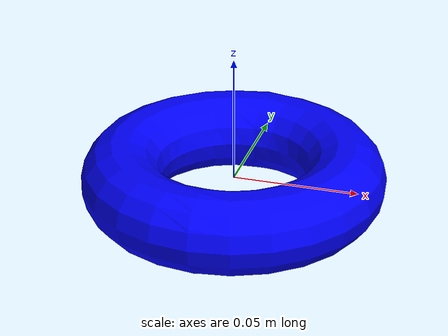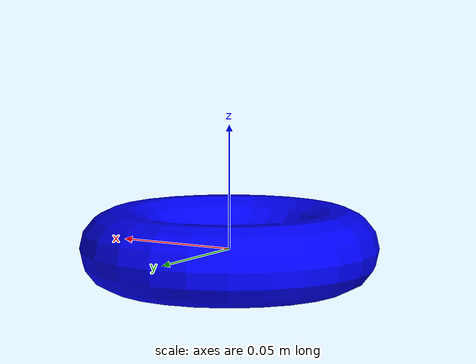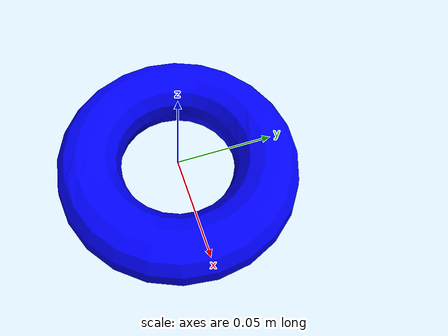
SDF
<?xml version="1.0"?>
<sdf version="1.4">
  <model name="blue_ring">
    <link name="link">
      <inertial>
        <inertia>
          <ixx>0.00003380</ixx>
          <ixy>0.000000</ixy>
          <ixz>0.000000</ixz>
          <iyy>0.00003380</iyy>
          <iyz>0.000000</iyz>
          <izz>0.0000625</izz>
        </inertia>
        <mass>0.025</mass>
      </inertial>
      <collision name="collision">
        <geometry>
          <mesh>
            <uri>model://blue_ring/meshes/ring.stl</uri>
            <scale>.0254 .0254 .0254</scale>
          </mesh>
        </geometry>
      </collision>
      <visual name="visual">
        <material>
          <ambient>0 0 1 1</ambient>
          <diffuse>0 0 1 1</diffuse>
          <specular>0 0 1 1</specular>
        </material>
        <geometry>
          <mesh>
            <uri>model://blue_ring/meshes/ring.stl</uri>
            <scale>.0254 .0254 .0254</scale>
          </mesh>
        </geometry>
      </visual>

      <velocity_decay>
        <linear>0.01</linear>
        <angular>0.01</angular>
      </velocity_decay>
    </link>
  </model>
</sdf>
